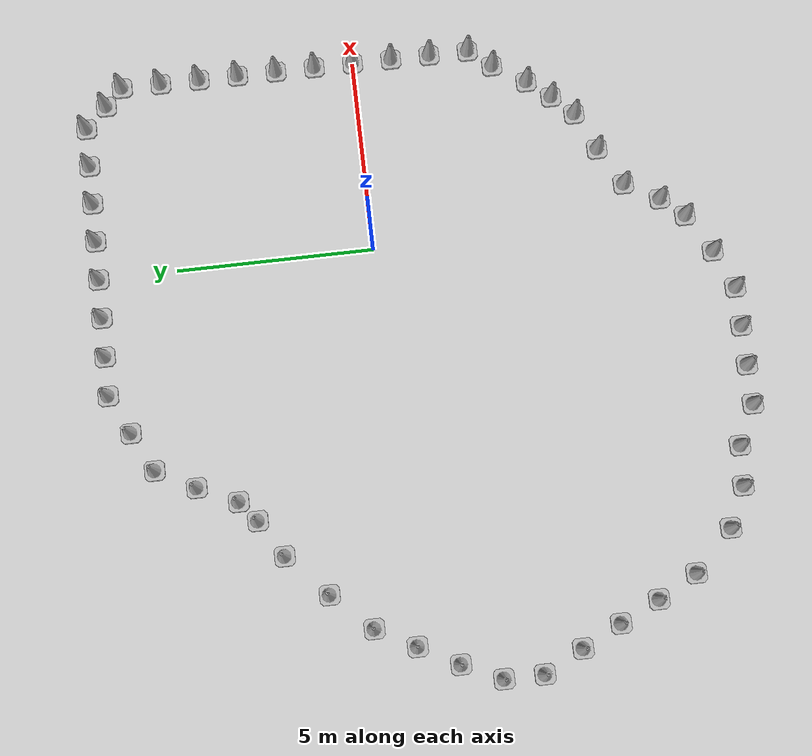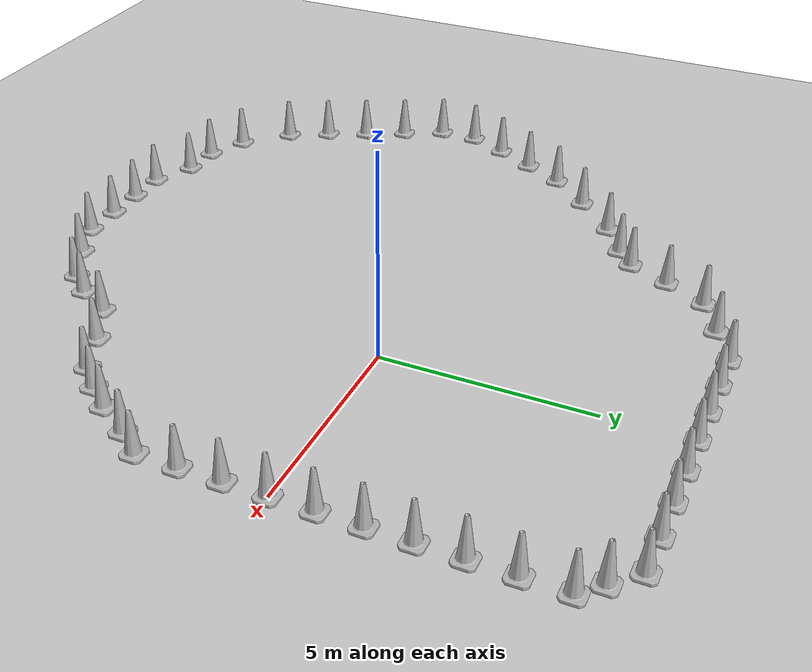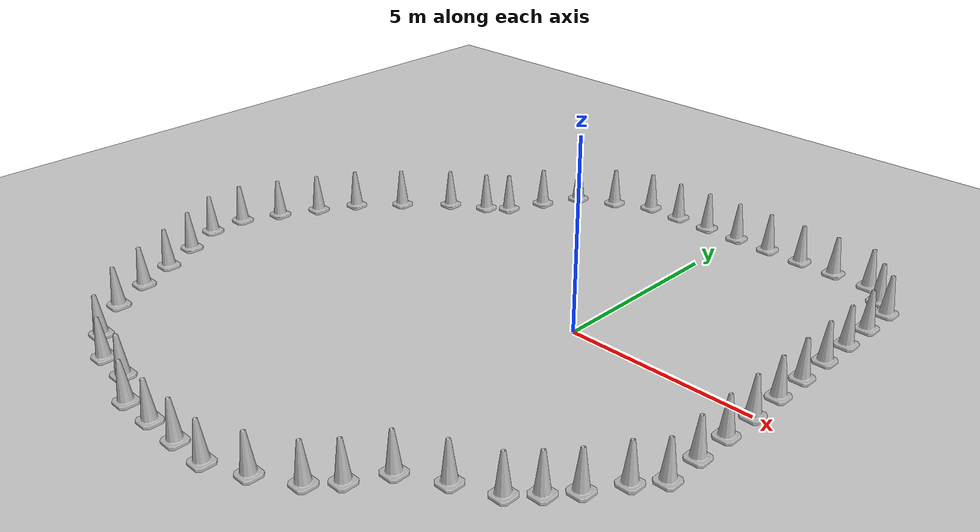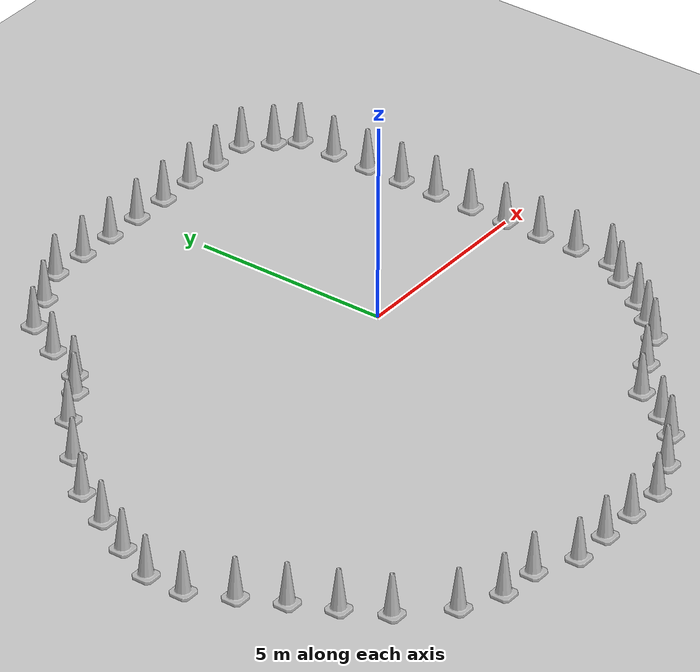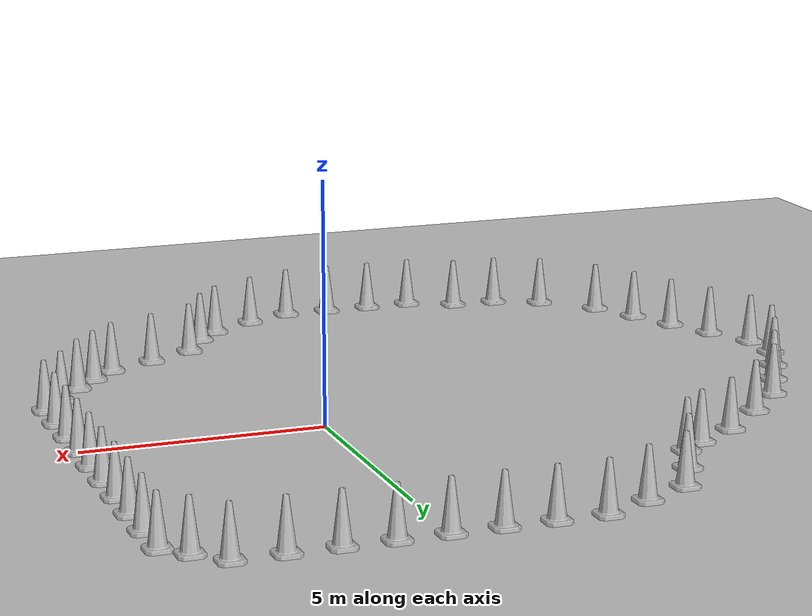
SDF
<sdf version="1.4">
 <world name="default">
  <model name="grass_plane">
   <static>1</static>
   <link name="link">
    <collision name="collision">
     <geometry><plane><normal>0 0 1</normal><size>75 75</size></plane></geometry>
     <surface><friction><ode><mu>100</mu><mu2>50</mu2></ode></friction></surface>
    </collision>
    <visual name="visual">
     <cast_shadows>0</cast_shadows>
     <geometry><plane><normal>0 0 1</normal><size>75 75</size></plane></geometry>
     <material>
      <script>
       <uri>model://grass_plane/materials/scripts</uri>
       <uri>model://grass_plane/materials/textures</uri>
       <name>grass_plane/Image</name>
      </script>
     </material>
    </visual>
    <velocity_decay><linear>0</linear><angular>0</angular></velocity_decay>
   </link>
  </model>
  <light name="sun" type="directional">
   <pose>0 0 10 0 -0 0</pose>
   <diffuse>0.8 0.8 0.8 1</diffuse>
   <specular>0.2 0.2 0.2 1</specular>
   <attenuation>
    <range>1000</range>
    <constant>0.9</constant>
    <linear>0.01</linear>
    <quadratic>0.001</quadratic>
   </attenuation>
   <direction>-0.5 0.1 -0.9</direction>
  </light>
  <physics type="ode">
   <max_step_size>0.001</max_step_size>
   <real_time_factor>1</real_time_factor>
   <real_time_update_rate>1000</real_time_update_rate>
   <gravity>0 0 -9.8</gravity>
  </physics>
  <scene><ambient>0.4 0.4 0.4 1</ambient><background>0.7 0.7 0.7 1</background><shadows>1</shadows></scene>
  <spherical_coordinates>
   <surface_model>EARTH_WGS84</surface_model>
   <latitude_deg>0</latitude_deg>
   <longitude_deg>0</longitude_deg>
   <elevation>0</elevation>
   <heading_deg>0</heading_deg>
  </spherical_coordinates>
  <model name="Construction Cone">
   <link name="link">
    <collision name="collision">
     <geometry>
      <mesh><scale>10 10 10</scale><uri>model://construction_cone/meshes/construction_cone.dae</uri></mesh>
     </geometry>
    </collision>
    <visual name="visual">
     <geometry>
      <mesh><scale>10 10 10</scale><uri>model://construction_cone/meshes/construction_cone.dae</uri></mesh>
     </geometry>
    </visual>
    <velocity_decay><linear>0</linear><angular>0</angular></velocity_decay>
    <inertial>
     <inertia><ixx>1</ixx><ixy>0</ixy><ixz>0</ixz><iyy>1</iyy><iyz>0</iyz><izz>1</izz></inertia>
     <mass>1</mass>
    </inertial>
   </link>
   <pose>-10.5405 -1 -0 -2e-06 0 0</pose>
   <static>0</static>
  </model>
  <model name="Construction Cone_0">
   <link name="link">
    <collision name="collision">
     <geometry>
      <mesh><scale>10 10 10</scale><uri>model://construction_cone/meshes/construction_cone.dae</uri></mesh>
     </geometry>
    </collision>
    <visual name="visual">
     <geometry>
      <mesh><scale>10 10 10</scale><uri>model://construction_cone/meshes/construction_cone.dae</uri></mesh>
     </geometry>
    </visual>
    <velocity_decay><linear>0</linear><angular>0</angular></velocity_decay>
    <inertial>
     <inertia><ixx>1</ixx><ixy>0</ixy><ixz>0</ixz><iyy>1</iyy><iyz>0</iyz><izz>1</izz></inertia>
     <mass>1</mass>
    </inertial>
   </link>
   <pose>-10 -0 -1e-06 -2e-06 -1e-06 8.07794e-28</pose>
   <static>0</static>
  </model>
  <model name="Construction Cone_1">
   <link name="link">
    <collision name="collision">
     <geometry>
      <mesh><scale>10 10 10</scale><uri>model://construction_cone/meshes/construction_cone.dae</uri></mesh>
     </geometry>
    </collision>
    <visual name="visual">
     <geometry>
      <mesh><scale>10 10 10</scale><uri>model://construction_cone/meshes/construction_cone.dae</uri></mesh>
     </geometry>
    </visual>
    <velocity_decay><linear>0</linear><angular>0</angular></velocity_decay>
    <inertial>
     <inertia><ixx>1</ixx><ixy>0</ixy><ixz>0</ixz><iyy>1</iyy><iyz>0</iyz><izz>1</izz></inertia>
     <mass>1</mass>
    </inertial>
   </link>
   <pose>-9.4567 1 -9e-06 3e-06 -0 0</pose>
   <static>0</static>
  </model>
  <model name="Construction Cone_2">
   <link name="link">
    <collision name="collision">
     <geometry>
      <mesh><scale>10 10 10</scale><uri>model://construction_cone/meshes/construction_cone.dae</uri></mesh>
     </geometry>
    </collision>
    <visual name="visual">
     <geometry>
      <mesh><scale>10 10 10</scale><uri>model://construction_cone/meshes/construction_cone.dae</uri></mesh>
     </geometry>
    </visual>
    <velocity_decay><linear>0</linear><angular>0</angular></velocity_decay>
    <inertial>
     <inertia><ixx>1</ixx><ixy>0</ixy><ixz>0</ixz><iyy>1</iyy><iyz>0</iyz><izz>1</izz></inertia>
     <mass>1</mass>
    </inertial>
   </link>
   <pose>-8.5194 2 -0 0 -1e-06 0</pose>
   <static>0</static>
  </model>
  <model name="Construction Cone_3">
   <link name="link">
    <collision name="collision">
     <geometry>
      <mesh><scale>10 10 10</scale><uri>model://construction_cone/meshes/construction_cone.dae</uri></mesh>
     </geometry>
    </collision>
    <visual name="visual">
     <geometry>
      <mesh><scale>10 10 10</scale><uri>model://construction_cone/meshes/construction_cone.dae</uri></mesh>
     </geometry>
    </visual>
    <velocity_decay><linear>0</linear><angular>0</angular></velocity_decay>
    <inertial>
     <inertia><ixx>1</ixx><ixy>0</ixy><ixz>0</ixz><iyy>1</iyy><iyz>0</iyz><izz>1</izz></inertia>
     <mass>1</mass>
    </inertial>
   </link>
   <pose>-7.45937 3 -0 0 -1e-06 0</pose>
   <static>0</static>
  </model>
  <model name="Construction Cone_4">
   <link name="link">
    <collision name="collision">
     <geometry>
      <mesh><scale>10 10 10</scale><uri>model://construction_cone/meshes/construction_cone.dae</uri></mesh>
     </geometry>
    </collision>
    <visual name="visual">
     <geometry>
      <mesh><scale>10 10 10</scale><uri>model://construction_cone/meshes/construction_cone.dae</uri></mesh>
     </geometry>
    </visual>
    <velocity_decay><linear>0</linear><angular>0</angular></velocity_decay>
    <inertial>
     <inertia><ixx>1</ixx><ixy>0</ixy><ixz>0</ixz><iyy>1</iyy><iyz>0</iyz><izz>1</izz></inertia>
     <mass>1</mass>
    </inertial>
   </link>
   <pose>-6.5222 3.57275 -9e-06 0 1e-06 0</pose>
   <static>0</static>
  </model>
  <model name="Construction Cone_5">
   <link name="link">
    <collision name="collision">
     <geometry>
      <mesh><scale>10 10 10</scale><uri>model://construction_cone/meshes/construction_cone.dae</uri></mesh>
     </geometry>
    </collision>
    <visual name="visual">
     <geometry>
      <mesh><scale>10 10 10</scale><uri>model://construction_cone/meshes/construction_cone.dae</uri></mesh>
     </geometry>
    </visual>
    <velocity_decay><linear>0</linear><angular>0</angular></velocity_decay>
    <inertial>
     <inertia><ixx>1</ixx><ixy>0</ixy><ixz>0</ixz><iyy>1</iyy><iyz>0</iyz><izz>1</izz></inertia>
     <mass>1</mass>
    </inertial>
   </link>
   <pose>-11 -2 1e-06 1e-06 -6e-06 0</pose>
   <static>0</static>
  </model>
  <model name="Construction Cone_6">
   <link name="link">
    <collision name="collision">
     <geometry>
      <mesh><scale>10 10 10</scale><uri>model://construction_cone/meshes/construction_cone.dae</uri></mesh>
     </geometry>
    </collision>
    <visual name="visual">
     <geometry>
      <mesh><scale>10 10 10</scale><uri>model://construction_cone/meshes/construction_cone.dae</uri></mesh>
     </geometry>
    </visual>
    <velocity_decay><linear>0</linear><angular>0</angular></velocity_decay>
    <inertial>
     <inertia><ixx>1</ixx><ixy>0</ixy><ixz>0</ixz><iyy>1</iyy><iyz>0</iyz><izz>1</izz></inertia>
     <mass>1</mass>
    </inertial>
   </link>
   <pose>-11 -3 0 1e-06 1e-06 0</pose>
   <static>0</static>
  </model>
  <model name="Construction Cone_7">
   <link name="link">
    <collision name="collision">
     <geometry>
      <mesh><scale>10 10 10</scale><uri>model://construction_cone/meshes/construction_cone.dae</uri></mesh>
     </geometry>
    </collision>
    <visual name="visual">
     <geometry>
      <mesh><scale>10 10 10</scale><uri>model://construction_cone/meshes/construction_cone.dae</uri></mesh>
     </geometry>
    </visual>
    <velocity_decay><linear>0</linear><angular>0</angular></velocity_decay>
    <inertial>
     <inertia><ixx>1</ixx><ixy>0</ixy><ixz>0</ixz><iyy>1</iyy><iyz>0</iyz><izz>1</izz></inertia>
     <mass>1</mass>
    </inertial>
   </link>
   <pose>-10.4925 -4 0 0 -0 0</pose>
   <static>0</static>
  </model>
  <model name="Construction Cone_8">
   <link name="link">
    <collision name="collision">
     <geometry>
      <mesh><scale>10 10 10</scale><uri>model://construction_cone/meshes/construction_cone.dae</uri></mesh>
     </geometry>
    </collision>
    <visual name="visual">
     <geometry>
      <mesh><scale>10 10 10</scale><uri>model://construction_cone/meshes/construction_cone.dae</uri></mesh>
     </geometry>
    </visual>
    <velocity_decay><linear>0</linear><angular>0</angular></velocity_decay>
    <inertial>
     <inertia><ixx>1</ixx><ixy>0</ixy><ixz>0</ixz><iyy>1</iyy><iyz>0</iyz><izz>1</izz></inertia>
     <mass>1</mass>
    </inertial>
   </link>
   <pose>-10 -5 0 0 -0 0</pose>
   <static>0</static>
  </model>
  <model name="Construction Cone_9">
   <link name="link">
    <collision name="collision">
     <geometry>
      <mesh><scale>10 10 10</scale><uri>model://construction_cone/meshes/construction_cone.dae</uri></mesh>
     </geometry>
    </collision>
    <visual name="visual">
     <geometry>
      <mesh><scale>10 10 10</scale><uri>model://construction_cone/meshes/construction_cone.dae</uri></mesh>
     </geometry>
    </visual>
    <velocity_decay><linear>0</linear><angular>0</angular></velocity_decay>
    <inertial>
     <inertia><ixx>1</ixx><ixy>0</ixy><ixz>0</ixz><iyy>1</iyy><iyz>0</iyz><izz>1</izz></inertia>
     <mass>1</mass>
    </inertial>
   </link>
   <pose>-9.52718 -6 -1e-06 -0 -0 -0</pose>
   <static>0</static>
  </model>
  <model name="Construction Cone_10">
   <link name="link">
    <collision name="collision">
     <geometry>
      <mesh><scale>10 10 10</scale><uri>model://construction_cone/meshes/construction_cone.dae</uri></mesh>
     </geometry>
    </collision>
    <visual name="visual">
     <geometry>
      <mesh><scale>10 10 10</scale><uri>model://construction_cone/meshes/construction_cone.dae</uri></mesh>
     </geometry>
    </visual>
    <velocity_decay><linear>0</linear><angular>0</angular></velocity_decay>
    <inertial>
     <inertia><ixx>1</ixx><ixy>0</ixy><ixz>0</ixz><iyy>1</iyy><iyz>0</iyz><izz>1</izz></inertia>
     <mass>1</mass>
    </inertial>
   </link>
   <pose>-9 -7 0 1e-06 -0 0</pose>
   <static>0</static>
  </model>
  <model name="Construction Cone_11">
   <link name="link">
    <collision name="collision">
     <geometry>
      <mesh><scale>10 10 10</scale><uri>model://construction_cone/meshes/construction_cone.dae</uri></mesh>
     </geometry>
    </collision>
    <visual name="visual">
     <geometry>
      <mesh><scale>10 10 10</scale><uri>model://construction_cone/meshes/construction_cone.dae</uri></mesh>
     </geometry>
    </visual>
    <velocity_decay><linear>0</linear><angular>0</angular></velocity_decay>
    <inertial>
     <inertia><ixx>1</ixx><ixy>0</ixy><ixz>0</ixz><iyy>1</iyy><iyz>0</iyz><izz>1</izz></inertia>
     <mass>1</mass>
    </inertial>
   </link>
   <pose>-8 -8 0 2e-06 -0 0</pose>
   <static>0</static>
  </model>
  <model name="Construction Cone_12">
   <link name="link">
    <collision name="collision">
     <geometry>
      <mesh><scale>10 10 10</scale><uri>model://construction_cone/meshes/construction_cone.dae</uri></mesh>
     </geometry>
    </collision>
    <visual name="visual">
     <geometry>
      <mesh><scale>10 10 10</scale><uri>model://construction_cone/meshes/construction_cone.dae</uri></mesh>
     </geometry>
    </visual>
    <velocity_decay><linear>0</linear><angular>0</angular></velocity_decay>
    <inertial>
     <inertia><ixx>1</ixx><ixy>0</ixy><ixz>0</ixz><iyy>1</iyy><iyz>0</iyz><izz>1</izz></inertia>
     <mass>1</mass>
    </inertial>
   </link>
   <pose>-7 -8.45905 -1e-06 0 -1e-06 0</pose>
   <static>0</static>
  </model>
  <model name="Construction Cone_13">
   <link name="link">
    <collision name="collision">
     <geometry>
      <mesh><scale>10 10 10</scale><uri>model://construction_cone/meshes/construction_cone.dae</uri></mesh>
     </geometry>
    </collision>
    <visual name="visual">
     <geometry>
      <mesh><scale>10 10 10</scale><uri>model://construction_cone/meshes/construction_cone.dae</uri></mesh>
     </geometry>
    </visual>
    <velocity_decay><linear>0</linear><angular>0</angular></velocity_decay>
    <inertial>
     <inertia><ixx>1</ixx><ixy>0</ixy><ixz>0</ixz><iyy>1</iyy><iyz>0</iyz><izz>1</izz></inertia>
     <mass>1</mass>
    </inertial>
   </link>
   <pose>-6 -8.52398 -1e-05 -1e-06 0 0</pose>
   <static>0</static>
  </model>
  <model name="Construction Cone_14">
   <link name="link">
    <collision name="collision">
     <geometry>
      <mesh><scale>10 10 10</scale><uri>model://construction_cone/meshes/construction_cone.dae</uri></mesh>
     </geometry>
    </collision>
    <visual name="visual">
     <geometry>
      <mesh><scale>10 10 10</scale><uri>model://construction_cone/meshes/construction_cone.dae</uri></mesh>
     </geometry>
    </visual>
    <velocity_decay><linear>0</linear><angular>0</angular></velocity_decay>
    <inertial>
     <inertia><ixx>1</ixx><ixy>0</ixy><ixz>0</ixz><iyy>1</iyy><iyz>0</iyz><izz>1</izz></inertia>
     <mass>1</mass>
    </inertial>
   </link>
   <pose>-5 -9 -9e-06 1e-06 -0 0</pose>
   <static>0</static>
  </model>
  <model name="Construction Cone_15">
   <link name="link">
    <collision name="collision">
     <geometry>
      <mesh><scale>10 10 10</scale><uri>model://construction_cone/meshes/construction_cone.dae</uri></mesh>
     </geometry>
    </collision>
    <visual name="visual">
     <geometry>
      <mesh><scale>10 10 10</scale><uri>model://construction_cone/meshes/construction_cone.dae</uri></mesh>
     </geometry>
    </visual>
    <velocity_decay><linear>0</linear><angular>0</angular></velocity_decay>
    <inertial>
     <inertia><ixx>1</ixx><ixy>0</ixy><ixz>0</ixz><iyy>1</iyy><iyz>0</iyz><izz>1</izz></inertia>
     <mass>1</mass>
    </inertial>
   </link>
   <pose>-4 -9 -3e-06 1e-06 2e-06 8.07794e-28</pose>
   <static>0</static>
  </model>
  <model name="Construction Cone_16">
   <link name="link">
    <collision name="collision">
     <geometry>
      <mesh><scale>10 10 10</scale><uri>model://construction_cone/meshes/construction_cone.dae</uri></mesh>
     </geometry>
    </collision>
    <visual name="visual">
     <geometry>
      <mesh><scale>10 10 10</scale><uri>model://construction_cone/meshes/construction_cone.dae</uri></mesh>
     </geometry>
    </visual>
    <velocity_decay><linear>0</linear><angular>0</angular></velocity_decay>
    <inertial>
     <inertia><ixx>1</ixx><ixy>0</ixy><ixz>0</ixz><iyy>1</iyy><iyz>0</iyz><izz>1</izz></inertia>
     <mass>1</mass>
    </inertial>
   </link>
   <pose>-3 -9 -1e-06 -1e-06 -0 -0</pose>
   <static>0</static>
  </model>
  <model name="Construction Cone_17">
   <link name="link">
    <collision name="collision">
     <geometry>
      <mesh><scale>10 10 10</scale><uri>model://construction_cone/meshes/construction_cone.dae</uri></mesh>
     </geometry>
    </collision>
    <visual name="visual">
     <geometry>
      <mesh><scale>10 10 10</scale><uri>model://construction_cone/meshes/construction_cone.dae</uri></mesh>
     </geometry>
    </visual>
    <velocity_decay><linear>0</linear><angular>0</angular></velocity_decay>
    <inertial>
     <inertia><ixx>1</ixx><ixy>0</ixy><ixz>0</ixz><iyy>1</iyy><iyz>0</iyz><izz>1</izz></inertia>
     <mass>1</mass>
    </inertial>
   </link>
   <pose>-2 -9 -0 0 -1e-06 0</pose>
   <static>0</static>
  </model>
  <model name="Construction Cone_18">
   <link name="link">
    <collision name="collision">
     <geometry>
      <mesh><scale>10 10 10</scale><uri>model://construction_cone/meshes/construction_cone.dae</uri></mesh>
     </geometry>
    </collision>
    <visual name="visual">
     <geometry>
      <mesh><scale>10 10 10</scale><uri>model://construction_cone/meshes/construction_cone.dae</uri></mesh>
     </geometry>
    </visual>
    <velocity_decay><linear>0</linear><angular>0</angular></velocity_decay>
    <inertial>
     <inertia><ixx>1</ixx><ixy>0</ixy><ixz>0</ixz><iyy>1</iyy><iyz>0</iyz><izz>1</izz></inertia>
     <mass>1</mass>
    </inertial>
   </link>
   <pose>-1 -8.57028 0 0 -0 0</pose>
   <static>0</static>
  </model>
  <model name="Construction Cone_19">
   <link name="link">
    <collision name="collision">
     <geometry>
      <mesh><scale>10 10 10</scale><uri>model://construction_cone/meshes/construction_cone.dae</uri></mesh>
     </geometry>
    </collision>
    <visual name="visual">
     <geometry>
      <mesh><scale>10 10 10</scale><uri>model://construction_cone/meshes/construction_cone.dae</uri></mesh>
     </geometry>
    </visual>
    <velocity_decay><linear>0</linear><angular>0</angular></velocity_decay>
    <inertial>
     <inertia><ixx>1</ixx><ixy>0</ixy><ixz>0</ixz><iyy>1</iyy><iyz>0</iyz><izz>1</izz></inertia>
     <mass>1</mass>
    </inertial>
   </link>
   <pose>0 -8 -8e-06 -1e-06 -1e-06 0</pose>
   <static>0</static>
  </model>
  <model name="Construction Cone_20">
   <link name="link">
    <collision name="collision">
     <geometry>
      <mesh><scale>10 10 10</scale><uri>model://construction_cone/meshes/construction_cone.dae</uri></mesh>
     </geometry>
    </collision>
    <visual name="visual">
     <geometry>
      <mesh><scale>10 10 10</scale><uri>model://construction_cone/meshes/construction_cone.dae</uri></mesh>
     </geometry>
    </visual>
    <velocity_decay><linear>0</linear><angular>0</angular></velocity_decay>
    <inertial>
     <inertia><ixx>1</ixx><ixy>0</ixy><ixz>0</ixz><iyy>1</iyy><iyz>0</iyz><izz>1</izz></inertia>
     <mass>1</mass>
    </inertial>
   </link>
   <pose>0.506366 -7.4197 0 1e-06 1e-06 0</pose>
   <static>0</static>
  </model>
  <model name="Construction Cone_21">
   <link name="link">
    <collision name="collision">
     <geometry>
      <mesh><scale>10 10 10</scale><uri>model://construction_cone/meshes/construction_cone.dae</uri></mesh>
     </geometry>
    </collision>
    <visual name="visual">
     <geometry>
      <mesh><scale>10 10 10</scale><uri>model://construction_cone/meshes/construction_cone.dae</uri></mesh>
     </geometry>
    </visual>
    <velocity_decay><linear>0</linear><angular>0</angular></velocity_decay>
    <inertial>
     <inertia><ixx>1</ixx><ixy>0</ixy><ixz>0</ixz><iyy>1</iyy><iyz>0</iyz><izz>1</izz></inertia>
     <mass>1</mass>
    </inertial>
   </link>
   <pose>1 -6.55085 -9e-06 0 1e-06 0</pose>
   <static>0</static>
  </model>
  <model name="Construction Cone_22">
   <link name="link">
    <collision name="collision">
     <geometry>
      <mesh><scale>10 10 10</scale><uri>model://construction_cone/meshes/construction_cone.dae</uri></mesh>
     </geometry>
    </collision>
    <visual name="visual">
     <geometry>
      <mesh><scale>10 10 10</scale><uri>model://construction_cone/meshes/construction_cone.dae</uri></mesh>
     </geometry>
    </visual>
    <velocity_decay><linear>0</linear><angular>0</angular></velocity_decay>
    <inertial>
     <inertia><ixx>1</ixx><ixy>0</ixy><ixz>0</ixz><iyy>1</iyy><iyz>0</iyz><izz>1</izz></inertia>
     <mass>1</mass>
    </inertial>
   </link>
   <pose>-5.54033 5 -9e-06 0 1e-06 0</pose>
   <static>0</static>
  </model>
  <model name="Construction Cone_23">
   <link name="link">
    <collision name="collision">
     <geometry>
      <mesh><scale>10 10 10</scale><uri>model://construction_cone/meshes/construction_cone.dae</uri></mesh>
     </geometry>
    </collision>
    <visual name="visual">
     <geometry>
      <mesh><scale>10 10 10</scale><uri>model://construction_cone/meshes/construction_cone.dae</uri></mesh>
     </geometry>
    </visual>
    <velocity_decay><linear>0</linear><angular>0</angular></velocity_decay>
    <inertial>
     <inertia><ixx>1</ixx><ixy>0</ixy><ixz>0</ixz><iyy>1</iyy><iyz>0</iyz><izz>1</izz></inertia>
     <mass>1</mass>
    </inertial>
   </link>
   <pose>-6 4 -9e-06 0 -0 0</pose>
   <static>0</static>
  </model>
  <model name="Construction Cone_24">
   <link name="link">
    <collision name="collision">
     <geometry>
      <mesh><scale>10 10 10</scale><uri>model://construction_cone/meshes/construction_cone.dae</uri></mesh>
     </geometry>
    </collision>
    <visual name="visual">
     <geometry>
      <mesh><scale>10 10 10</scale><uri>model://construction_cone/meshes/construction_cone.dae</uri></mesh>
     </geometry>
    </visual>
    <velocity_decay><linear>0</linear><angular>0</angular></velocity_decay>
    <inertial>
     <inertia><ixx>1</ixx><ixy>0</ixy><ixz>0</ixz><iyy>1</iyy><iyz>0</iyz><izz>1</izz></inertia>
     <mass>1</mass>
    </inertial>
   </link>
   <pose>-5 6 -0 -2e-06 -0 -0</pose>
   <static>0</static>
  </model>
  <model name="Construction Cone_25">
   <link name="link">
    <collision name="collision">
     <geometry>
      <mesh><scale>10 10 10</scale><uri>model://construction_cone/meshes/construction_cone.dae</uri></mesh>
     </geometry>
    </collision>
    <visual name="visual">
     <geometry>
      <mesh><scale>10 10 10</scale><uri>model://construction_cone/meshes/construction_cone.dae</uri></mesh>
     </geometry>
    </visual>
    <velocity_decay><linear>0</linear><angular>0</angular></velocity_decay>
    <inertial>
     <inertia><ixx>1</ixx><ixy>0</ixy><ixz>0</ixz><iyy>1</iyy><iyz>0</iyz><izz>1</izz></inertia>
     <mass>1</mass>
    </inertial>
   </link>
   <pose>-4 6.51238 -3e-06 1e-06 -0 0</pose>
   <static>0</static>
  </model>
  <model name="Construction Cone_26">
   <link name="link">
    <collision name="collision">
     <geometry>
      <mesh><scale>10 10 10</scale><uri>model://construction_cone/meshes/construction_cone.dae</uri></mesh>
     </geometry>
    </collision>
    <visual name="visual">
     <geometry>
      <mesh><scale>10 10 10</scale><uri>model://construction_cone/meshes/construction_cone.dae</uri></mesh>
     </geometry>
    </visual>
    <velocity_decay><linear>0</linear><angular>0</angular></velocity_decay>
    <inertial>
     <inertia><ixx>1</ixx><ixy>0</ixy><ixz>0</ixz><iyy>1</iyy><iyz>0</iyz><izz>1</izz></inertia>
     <mass>1</mass>
    </inertial>
   </link>
   <pose>-3 7 -8e-06 5e-06 -4e-06 0</pose>
   <static>0</static>
  </model>
  <model name="Construction Cone_27">
   <link name="link">
    <collision name="collision">
     <geometry>
      <mesh><scale>10 10 10</scale><uri>model://construction_cone/meshes/construction_cone.dae</uri></mesh>
     </geometry>
    </collision>
    <visual name="visual">
     <geometry>
      <mesh><scale>10 10 10</scale><uri>model://construction_cone/meshes/construction_cone.dae</uri></mesh>
     </geometry>
    </visual>
    <velocity_decay><linear>0</linear><angular>0</angular></velocity_decay>
    <inertial>
     <inertia><ixx>1</ixx><ixy>0</ixy><ixz>0</ixz><iyy>1</iyy><iyz>0</iyz><izz>1</izz></inertia>
     <mass>1</mass>
    </inertial>
   </link>
   <pose>-2 7 -9e-06 0 -0 0</pose>
   <static>0</static>
  </model>
  <model name="Construction Cone_28">
   <link name="link">
    <collision name="collision">
     <geometry>
      <mesh><scale>10 10 10</scale><uri>model://construction_cone/meshes/construction_cone.dae</uri></mesh>
     </geometry>
    </collision>
    <visual name="visual">
     <geometry>
      <mesh><scale>10 10 10</scale><uri>model://construction_cone/meshes/construction_cone.dae</uri></mesh>
     </geometry>
    </visual>
    <velocity_decay><linear>0</linear><angular>0</angular></velocity_decay>
    <inertial>
     <inertia><ixx>1</ixx><ixy>0</ixy><ixz>0</ixz><iyy>1</iyy><iyz>0</iyz><izz>1</izz></inertia>
     <mass>1</mass>
    </inertial>
   </link>
   <pose>-1 7 0 0 -0 0</pose>
   <static>0</static>
  </model>
  <model name="Construction Cone_29">
   <link name="link">
    <collision name="collision">
     <geometry>
      <mesh><scale>10 10 10</scale><uri>model://construction_cone/meshes/construction_cone.dae</uri></mesh>
     </geometry>
    </collision>
    <visual name="visual">
     <geometry>
      <mesh><scale>10 10 10</scale><uri>model://construction_cone/meshes/construction_cone.dae</uri></mesh>
     </geometry>
    </visual>
    <velocity_decay><linear>0</linear><angular>0</angular></velocity_decay>
    <inertial>
     <inertia><ixx>1</ixx><ixy>0</ixy><ixz>0</ixz><iyy>1</iyy><iyz>0</iyz><izz>1</izz></inertia>
     <mass>1</mass>
    </inertial>
   </link>
   <pose>0 7 -0 1e-06 -0 0</pose>
   <static>0</static>
  </model>
  <model name="Construction Cone_30">
   <link name="link">
    <collision name="collision">
     <geometry>
      <mesh><scale>10 10 10</scale><uri>model://construction_cone/meshes/construction_cone.dae</uri></mesh>
     </geometry>
    </collision>
    <visual name="visual">
     <geometry>
      <mesh><scale>10 10 10</scale><uri>model://construction_cone/meshes/construction_cone.dae</uri></mesh>
     </geometry>
    </visual>
    <velocity_decay><linear>0</linear><angular>0</angular></velocity_decay>
    <inertial>
     <inertia><ixx>1</ixx><ixy>0</ixy><ixz>0</ixz><iyy>1</iyy><iyz>0</iyz><izz>1</izz></inertia>
     <mass>1</mass>
    </inertial>
   </link>
   <pose>1 7 -9e-06 1e-06 -0 0</pose>
   <static>0</static>
  </model>
  <model name="Construction Cone_31">
   <link name="link">
    <collision name="collision">
     <geometry>
      <mesh><scale>10 10 10</scale><uri>model://construction_cone/meshes/construction_cone.dae</uri></mesh>
     </geometry>
    </collision>
    <visual name="visual">
     <geometry>
      <mesh><scale>10 10 10</scale><uri>model://construction_cone/meshes/construction_cone.dae</uri></mesh>
     </geometry>
    </visual>
    <velocity_decay><linear>0</linear><angular>0</angular></velocity_decay>
    <inertial>
     <inertia><ixx>1</ixx><ixy>0</ixy><ixz>0</ixz><iyy>1</iyy><iyz>0</iyz><izz>1</izz></inertia>
     <mass>1</mass>
    </inertial>
   </link>
   <pose>2 -6 -9e-06 0 1e-06 0</pose>
   <static>0</static>
  </model>
  <model name="Construction Cone_32">
   <link name="link">
    <collision name="collision">
     <geometry>
      <mesh><scale>10 10 10</scale><uri>model://construction_cone/meshes/construction_cone.dae</uri></mesh>
     </geometry>
    </collision>
    <visual name="visual">
     <geometry>
      <mesh><scale>10 10 10</scale><uri>model://construction_cone/meshes/construction_cone.dae</uri></mesh>
     </geometry>
    </visual>
    <velocity_decay><linear>0</linear><angular>0</angular></velocity_decay>
    <inertial>
     <inertia><ixx>1</ixx><ixy>0</ixy><ixz>0</ixz><iyy>1</iyy><iyz>0</iyz><izz>1</izz></inertia>
     <mass>1</mass>
    </inertial>
   </link>
   <pose>3 -5.53575 -0 -2e-06 -0 -0</pose>
   <static>0</static>
  </model>
  <model name="Construction Cone_33">
   <link name="link">
    <collision name="collision">
     <geometry>
      <mesh><scale>10 10 10</scale><uri>model://construction_cone/meshes/construction_cone.dae</uri></mesh>
     </geometry>
    </collision>
    <visual name="visual">
     <geometry>
      <mesh><scale>10 10 10</scale><uri>model://construction_cone/meshes/construction_cone.dae</uri></mesh>
     </geometry>
    </visual>
    <velocity_decay><linear>0</linear><angular>0</angular></velocity_decay>
    <inertial>
     <inertia><ixx>1</ixx><ixy>0</ixy><ixz>0</ixz><iyy>1</iyy><iyz>0</iyz><izz>1</izz></inertia>
     <mass>1</mass>
    </inertial>
   </link>
   <pose>3.52288 -5 -1e-06 0 -1e-06 0</pose>
   <static>0</static>
  </model>
  <model name="Construction Cone_34">
   <link name="link">
    <collision name="collision">
     <geometry>
      <mesh><scale>10 10 10</scale><uri>model://construction_cone/meshes/construction_cone.dae</uri></mesh>
     </geometry>
    </collision>
    <visual name="visual">
     <geometry>
      <mesh><scale>10 10 10</scale><uri>model://construction_cone/meshes/construction_cone.dae</uri></mesh>
     </geometry>
    </visual>
    <velocity_decay><linear>0</linear><angular>0</angular></velocity_decay>
    <inertial>
     <inertia><ixx>1</ixx><ixy>0</ixy><ixz>0</ixz><iyy>1</iyy><iyz>0</iyz><izz>1</izz></inertia>
     <mass>1</mass>
    </inertial>
   </link>
   <pose>4 -4.41477 -9e-06 0 1e-06 0</pose>
   <static>0</static>
  </model>
  <model name="Construction Cone_35">
   <link name="link">
    <collision name="collision">
     <geometry>
      <mesh><scale>10 10 10</scale><uri>model://construction_cone/meshes/construction_cone.dae</uri></mesh>
     </geometry>
    </collision>
    <visual name="visual">
     <geometry>
      <mesh><scale>10 10 10</scale><uri>model://construction_cone/meshes/construction_cone.dae</uri></mesh>
     </geometry>
    </visual>
    <velocity_decay><linear>0</linear><angular>0</angular></velocity_decay>
    <inertial>
     <inertia><ixx>1</ixx><ixy>0</ixy><ixz>0</ixz><iyy>1</iyy><iyz>0</iyz><izz>1</izz></inertia>
     <mass>1</mass>
    </inertial>
   </link>
   <pose>4.5249 -3.58358 0 1e-06 1e-06 0</pose>
   <static>0</static>
  </model>
  <model name="Construction Cone_36">
   <link name="link">
    <collision name="collision">
     <geometry>
      <mesh><scale>10 10 10</scale><uri>model://construction_cone/meshes/construction_cone.dae</uri></mesh>
     </geometry>
    </collision>
    <visual name="visual">
     <geometry>
      <mesh><scale>10 10 10</scale><uri>model://construction_cone/meshes/construction_cone.dae</uri></mesh>
     </geometry>
    </visual>
    <velocity_decay><linear>0</linear><angular>0</angular></velocity_decay>
    <inertial>
     <inertia><ixx>1</ixx><ixy>0</ixy><ixz>0</ixz><iyy>1</iyy><iyz>0</iyz><izz>1</izz></inertia>
     <mass>1</mass>
    </inertial>
   </link>
   <pose>2 7 -1e-05 0 -0 0</pose>
   <static>0</static>
  </model>
  <model name="Construction Cone_37">
   <link name="link">
    <collision name="collision">
     <geometry>
      <mesh><scale>10 10 10</scale><uri>model://construction_cone/meshes/construction_cone.dae</uri></mesh>
     </geometry>
    </collision>
    <visual name="visual">
     <geometry>
      <mesh><scale>10 10 10</scale><uri>model://construction_cone/meshes/construction_cone.dae</uri></mesh>
     </geometry>
    </visual>
    <velocity_decay><linear>0</linear><angular>0</angular></velocity_decay>
    <inertial>
     <inertia><ixx>1</ixx><ixy>0</ixy><ixz>0</ixz><iyy>1</iyy><iyz>0</iyz><izz>1</izz></inertia>
     <mass>1</mass>
    </inertial>
   </link>
   <pose>3 7 0 0 -0 0</pose>
   <static>0</static>
  </model>
  <model name="Construction Cone_38">
   <link name="link">
    <collision name="collision">
     <geometry>
      <mesh><scale>10 10 10</scale><uri>model://construction_cone/meshes/construction_cone.dae</uri></mesh>
     </geometry>
    </collision>
    <visual name="visual">
     <geometry>
      <mesh><scale>10 10 10</scale><uri>model://construction_cone/meshes/construction_cone.dae</uri></mesh>
     </geometry>
    </visual>
    <velocity_decay><linear>0</linear><angular>0</angular></velocity_decay>
    <inertial>
     <inertia><ixx>1</ixx><ixy>0</ixy><ixz>0</ixz><iyy>1</iyy><iyz>0</iyz><izz>1</izz></inertia>
     <mass>1</mass>
    </inertial>
   </link>
   <pose>4 7 -9e-06 0 1e-06 0</pose>
   <static>0</static>
  </model>
  <model name="Construction Cone_39">
   <link name="link">
    <collision name="collision">
     <geometry>
      <mesh><scale>10 10 10</scale><uri>model://construction_cone/meshes/construction_cone.dae</uri></mesh>
     </geometry>
    </collision>
    <visual name="visual">
     <geometry>
      <mesh><scale>10 10 10</scale><uri>model://construction_cone/meshes/construction_cone.dae</uri></mesh>
     </geometry>
    </visual>
    <velocity_decay><linear>0</linear><angular>0</angular></velocity_decay>
    <inertial>
     <inertia><ixx>1</ixx><ixy>0</ixy><ixz>0</ixz><iyy>1</iyy><iyz>0</iyz><izz>1</izz></inertia>
     <mass>1</mass>
    </inertial>
   </link>
   <pose>4.54733 6.44951 0 0 -0 0</pose>
   <static>0</static>
  </model>
  <model name="Construction Cone_40">
   <link name="link">
    <collision name="collision">
     <geometry>
      <mesh><scale>10 10 10</scale><uri>model://construction_cone/meshes/construction_cone.dae</uri></mesh>
     </geometry>
    </collision>
    <visual name="visual">
     <geometry>
      <mesh><scale>10 10 10</scale><uri>model://construction_cone/meshes/construction_cone.dae</uri></mesh>
     </geometry>
    </visual>
    <velocity_decay><linear>0</linear><angular>0</angular></velocity_decay>
    <inertial>
     <inertia><ixx>1</ixx><ixy>0</ixy><ixz>0</ixz><iyy>1</iyy><iyz>0</iyz><izz>1</izz></inertia>
     <mass>1</mass>
    </inertial>
   </link>
   <pose>5 -3 -0 -2e-06 0 0</pose>
   <static>0</static>
  </model>
  <model name="Construction Cone_41">
   <link name="link">
    <collision name="collision">
     <geometry>
      <mesh><scale>10 10 10</scale><uri>model://construction_cone/meshes/construction_cone.dae</uri></mesh>
     </geometry>
    </collision>
    <visual name="visual">
     <geometry>
      <mesh><scale>10 10 10</scale><uri>model://construction_cone/meshes/construction_cone.dae</uri></mesh>
     </geometry>
    </visual>
    <velocity_decay><linear>0</linear><angular>0</angular></velocity_decay>
    <inertial>
     <inertia><ixx>1</ixx><ixy>0</ixy><ixz>0</ixz><iyy>1</iyy><iyz>0</iyz><izz>1</izz></inertia>
     <mass>1</mass>
    </inertial>
   </link>
   <pose>5 -2 -0 -1e-06 -0 -0</pose>
   <static>0</static>
  </model>
  <model name="Construction Cone_42">
   <link name="link">
    <collision name="collision">
     <geometry>
      <mesh><scale>10 10 10</scale><uri>model://construction_cone/meshes/construction_cone.dae</uri></mesh>
     </geometry>
    </collision>
    <visual name="visual">
     <geometry>
      <mesh><scale>10 10 10</scale><uri>model://construction_cone/meshes/construction_cone.dae</uri></mesh>
     </geometry>
    </visual>
    <velocity_decay><linear>0</linear><angular>0</angular></velocity_decay>
    <inertial>
     <inertia><ixx>1</ixx><ixy>0</ixy><ixz>0</ixz><iyy>1</iyy><iyz>0</iyz><izz>1</izz></inertia>
     <mass>1</mass>
    </inertial>
   </link>
   <pose>5 -1 0 0 -0 0</pose>
   <static>0</static>
  </model>
  <model name="Construction Cone_43">
   <link name="link">
    <collision name="collision">
     <geometry>
      <mesh><scale>10 10 10</scale><uri>model://construction_cone/meshes/construction_cone.dae</uri></mesh>
     </geometry>
    </collision>
    <visual name="visual">
     <geometry>
      <mesh><scale>10 10 10</scale><uri>model://construction_cone/meshes/construction_cone.dae</uri></mesh>
     </geometry>
    </visual>
    <velocity_decay><linear>0</linear><angular>0</angular></velocity_decay>
    <inertial>
     <inertia><ixx>1</ixx><ixy>0</ixy><ixz>0</ixz><iyy>1</iyy><iyz>0</iyz><izz>1</izz></inertia>
     <mass>1</mass>
    </inertial>
   </link>
   <pose>5 -0 -4e-06 -1e-05 2e-06 0</pose>
   <static>0</static>
  </model>
  <model name="Construction Cone_44">
   <link name="link">
    <collision name="collision">
     <geometry>
      <mesh><scale>10 10 10</scale><uri>model://construction_cone/meshes/construction_cone.dae</uri></mesh>
     </geometry>
    </collision>
    <visual name="visual">
     <geometry>
      <mesh><scale>10 10 10</scale><uri>model://construction_cone/meshes/construction_cone.dae</uri></mesh>
     </geometry>
    </visual>
    <velocity_decay><linear>0</linear><angular>0</angular></velocity_decay>
    <inertial>
     <inertia><ixx>1</ixx><ixy>0</ixy><ixz>0</ixz><iyy>1</iyy><iyz>0</iyz><izz>1</izz></inertia>
     <mass>1</mass>
    </inertial>
   </link>
   <pose>5 1 0 1e-06 -0 0</pose>
   <static>0</static>
  </model>
  <model name="Construction Cone_45">
   <link name="link">
    <collision name="collision">
     <geometry>
      <mesh><scale>10 10 10</scale><uri>model://construction_cone/meshes/construction_cone.dae</uri></mesh>
     </geometry>
    </collision>
    <visual name="visual">
     <geometry>
      <mesh><scale>10 10 10</scale><uri>model://construction_cone/meshes/construction_cone.dae</uri></mesh>
     </geometry>
    </visual>
    <velocity_decay><linear>0</linear><angular>0</angular></velocity_decay>
    <inertial>
     <inertia><ixx>1</ixx><ixy>0</ixy><ixz>0</ixz><iyy>1</iyy><iyz>0</iyz><izz>1</izz></inertia>
     <mass>1</mass>
    </inertial>
   </link>
   <pose>5 2 0 0 -0 0</pose>
   <static>0</static>
  </model>
  <model name="Construction Cone_46">
   <link name="link">
    <collision name="collision">
     <geometry>
      <mesh><scale>10 10 10</scale><uri>model://construction_cone/meshes/construction_cone.dae</uri></mesh>
     </geometry>
    </collision>
    <visual name="visual">
     <geometry>
      <mesh><scale>10 10 10</scale><uri>model://construction_cone/meshes/construction_cone.dae</uri></mesh>
     </geometry>
    </visual>
    <velocity_decay><linear>0</linear><angular>0</angular></velocity_decay>
    <inertial>
     <inertia><ixx>1</ixx><ixy>0</ixy><ixz>0</ixz><iyy>1</iyy><iyz>0</iyz><izz>1</izz></inertia>
     <mass>1</mass>
    </inertial>
   </link>
   <pose>5 3 0 1e-06 1e-06 0</pose>
   <static>0</static>
  </model>
  <model name="Construction Cone_47">
   <link name="link">
    <collision name="collision">
     <geometry>
      <mesh><scale>10 10 10</scale><uri>model://construction_cone/meshes/construction_cone.dae</uri></mesh>
     </geometry>
    </collision>
    <visual name="visual">
     <geometry>
      <mesh><scale>10 10 10</scale><uri>model://construction_cone/meshes/construction_cone.dae</uri></mesh>
     </geometry>
    </visual>
    <velocity_decay><linear>0</linear><angular>0</angular></velocity_decay>
    <inertial>
     <inertia><ixx>1</ixx><ixy>0</ixy><ixz>0</ixz><iyy>1</iyy><iyz>0</iyz><izz>1</izz></inertia>
     <mass>1</mass>
    </inertial>
   </link>
   <pose>5 4 -0 -1e-06 -0 -0</pose>
   <static>0</static>
  </model>
  <model name="Construction Cone_48">
   <link name="link">
    <collision name="collision">
     <geometry>
      <mesh><scale>10 10 10</scale><uri>model://construction_cone/meshes/construction_cone.dae</uri></mesh>
     </geometry>
    </collision>
    <visual name="visual">
     <geometry>
      <mesh><scale>10 10 10</scale><uri>model://construction_cone/meshes/construction_cone.dae</uri></mesh>
     </geometry>
    </visual>
    <velocity_decay><linear>0</linear><angular>0</angular></velocity_decay>
    <inertial>
     <inertia><ixx>1</ixx><ixy>0</ixy><ixz>0</ixz><iyy>1</iyy><iyz>0</iyz><izz>1</izz></inertia>
     <mass>1</mass>
    </inertial>
   </link>
   <pose>5 5 -1e-06 0 -1e-06 0</pose>
   <static>0</static>
  </model>
  <model name="Construction Cone_49">
   <link name="link">
    <collision name="collision">
     <geometry>
      <mesh><scale>10 10 10</scale><uri>model://construction_cone/meshes/construction_cone.dae</uri></mesh>
     </geometry>
    </collision>
    <visual name="visual">
     <geometry>
      <mesh><scale>10 10 10</scale><uri>model://construction_cone/meshes/construction_cone.dae</uri></mesh>
     </geometry>
    </visual>
    <velocity_decay><linear>0</linear><angular>0</angular></velocity_decay>
    <inertial>
     <inertia><ixx>1</ixx><ixy>0</ixy><ixz>0</ixz><iyy>1</iyy><iyz>0</iyz><izz>1</izz></inertia>
     <mass>1</mass>
    </inertial>
   </link>
   <pose>5 6 0 0 -0 0</pose>
   <static>0</static>
  </model>
 </world>
</sdf>
